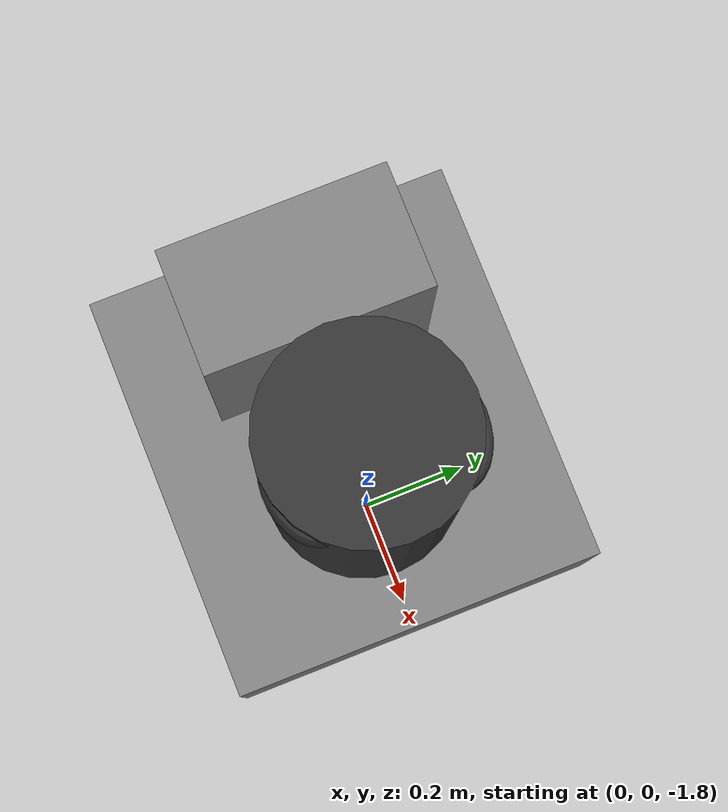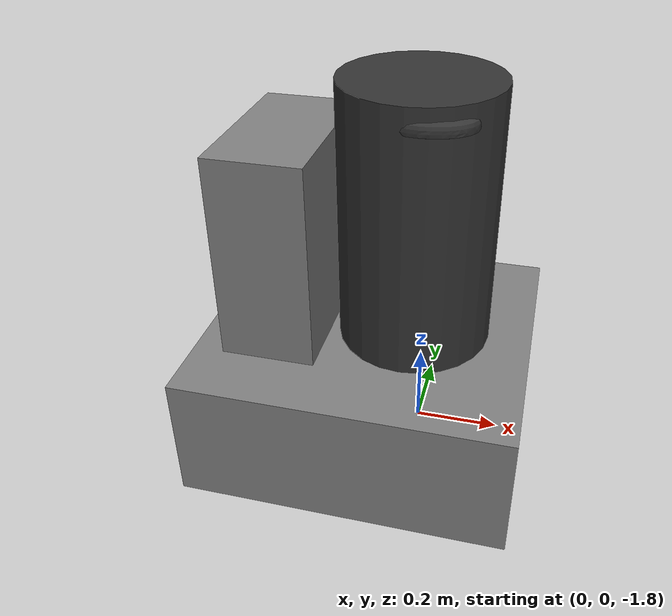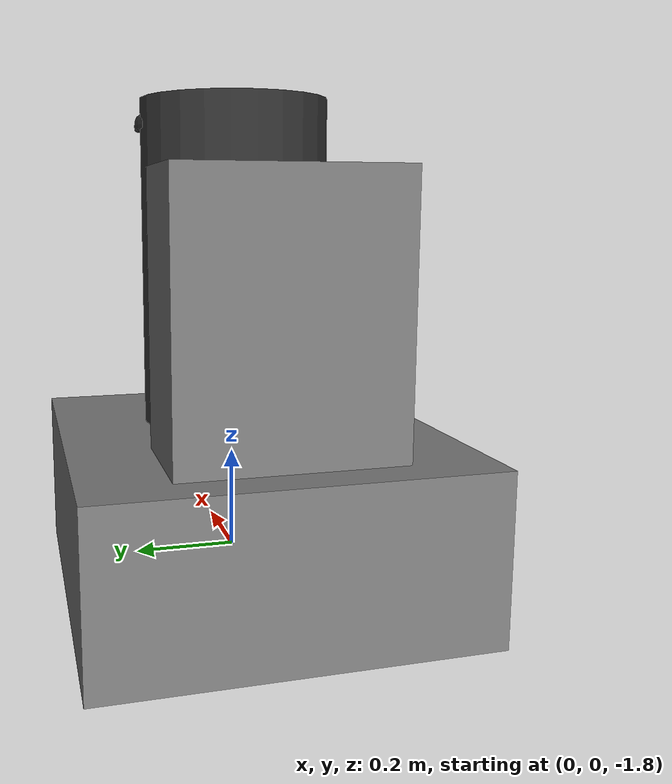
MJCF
<mujoco model="rethink_mount">
    <asset>
        <mesh name="pedestal" file="meshes/rethink_mount/pedestal.stl" />
    </asset>
    <worldbody>
        <body name="base" pos="0 0 -0.922">
            <body name="controller_box" pos="0 0 0">
                <inertial diaginertia="1.71363 1.27988 0.809981" mass="46.64" pos="-0.325 0 -0.38"/>
                <geom pos="-0.325 0 -0.38" size="0.11 0.2 0.265" type="box" name="controller_box_col"/>
            </body>
            <body name="pedestal_feet" pos="0 0 0">
                <inertial diaginertia="8.16095 9.59375 15.0785" mass="167.09" pos="-0.1225 0 -0.758"/>
                <geom pos="-0.1225 0 -0.758" size="0.385 0.35 0.155" type="box" name="pedestal_feet_col"/>
            </body>
            <body name="torso" pos="0 0 0">
                <inertial diaginertia="1e-08 1e-08 1e-08" mass="0.0001" pos="0 0 0"/>
                <geom conaffinity="0" contype="0" group="1" pos="0 0 -0.05" size="0.05 0.05 0.05" type="box" name="torso_vis" rgba="0.2 0.2 0.2 1" />
            </body>
            <body name="pedestal" pos="0 0 0">
                <inertial diaginertia="6.0869 5.81635 4.20915" mass="60.864" pos="0 0 0" quat="0.659267 -0.259505 -0.260945 0.655692"/>
                <geom conaffinity="0" contype="0" group="1" mesh="pedestal" type="mesh" name="pedestal_vis" rgba="0.2 0.2 0.2 1" />
                <geom pos="-0.02 0 -0.29" rgba="0.2 0.2 0.2 1" size="0.18 0.31" type="cylinder" name="pedestal_col"/>
            </body>
        </body>
    </worldbody>
</mujoco>
